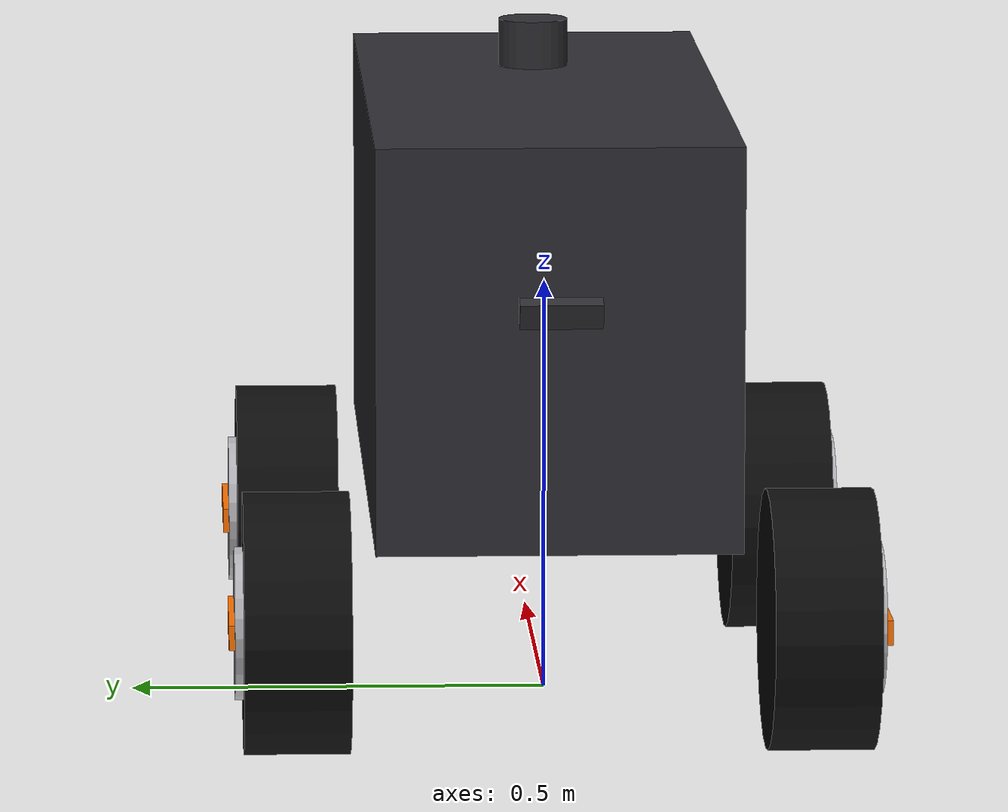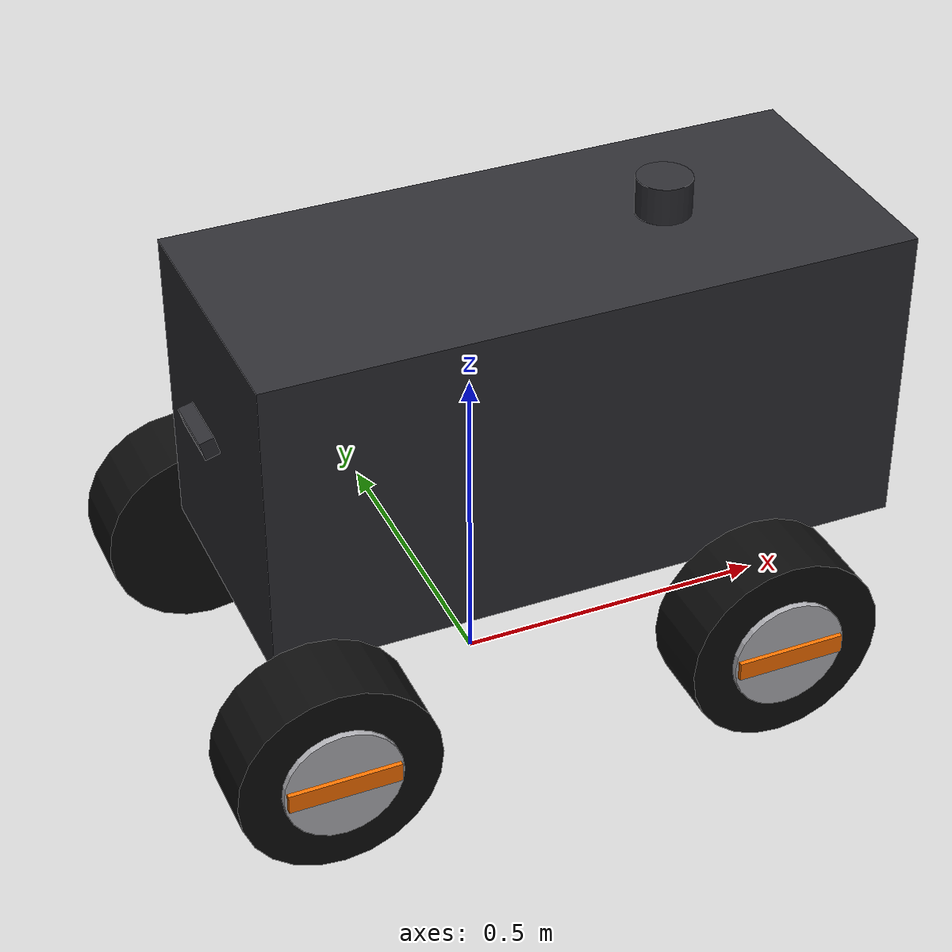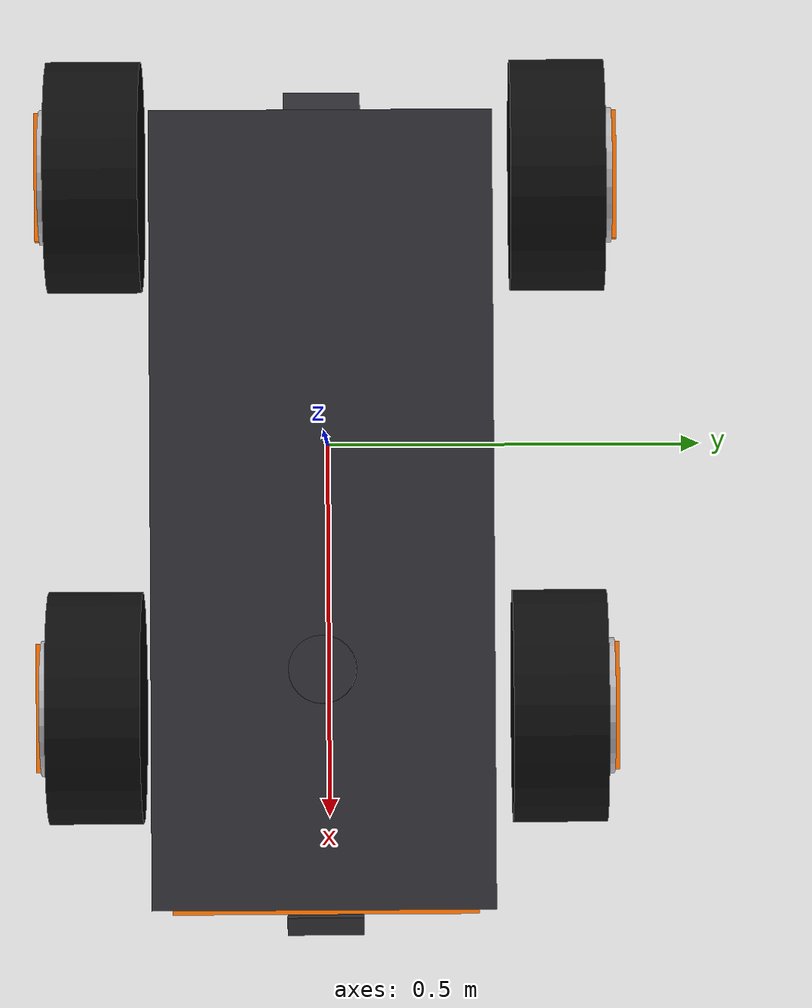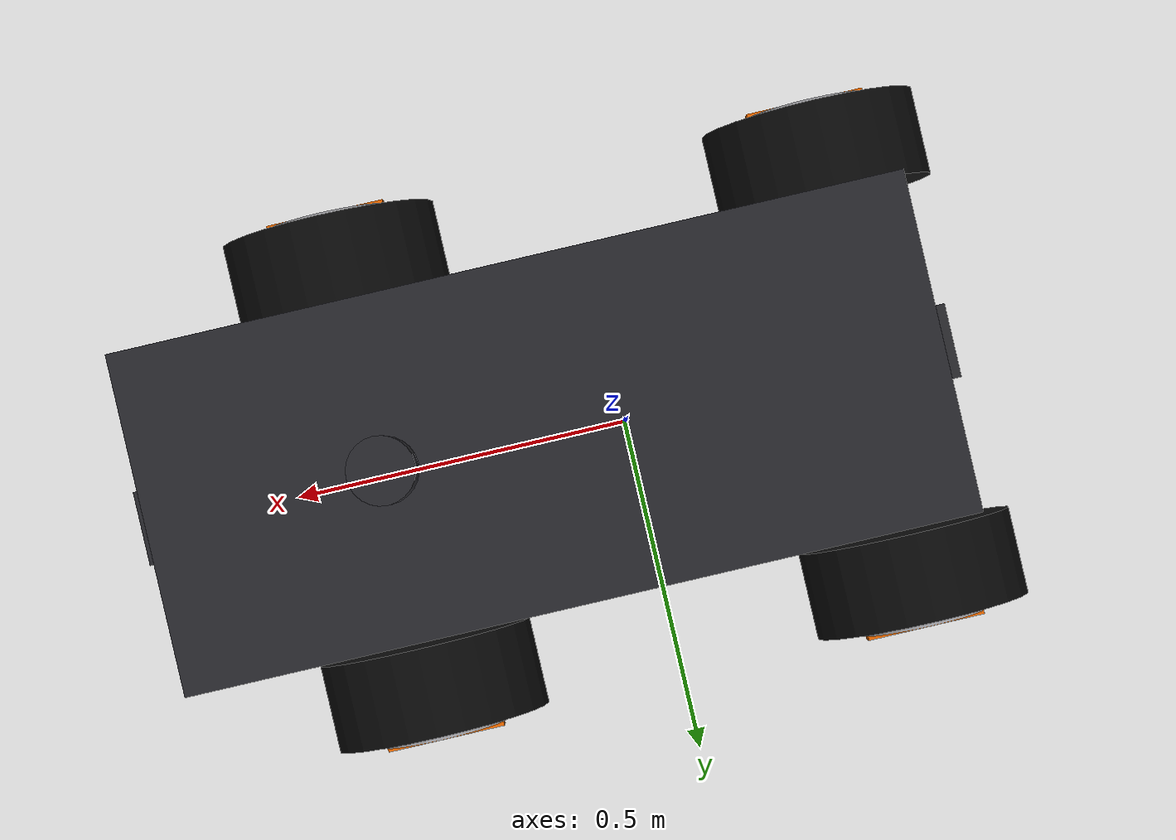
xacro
<?xml version="1.0"?>
<robot name="innex_1" xmlns:xacro="http://www.ros.org/wiki/xacro" xmlns:gz="http://gazebosim.org/schema">

  <!-- Will replace with proper values when rover is measured -->
  <xacro:property name="chassis_length" value="1.000"/>
  <xacro:property name="chassis_width" value="0.430"/>
  <xacro:property name="chassis_height" value="0.480"/>
  <xacro:property name="chassis_ground_clearance" value="0.240"/>
  <xacro:property name="chassis_x_offset" value="0.107"/>
  <xacro:property name="wheel_radius" value="0.154"/>
  <xacro:property name="wheel_width" value="0.125"/>
  <xacro:property name="wheelbase" value="0.705"/>
  <xacro:property name="track" value="0.614"/>

  <!-- will get proper masses when rover is weighed -->
  <xacro:property name="chassis_mass" value="56.0"/>
  <xacro:property name="wheel_mass" value="1.0"/>

  <material name="carbon">
    <color rgba="0.18 0.18 0.2 1"/>
  </material>
  <material name="tyre">
    <color rgba="0.05 0.05 0.05 1"/>
  </material>
  <material name="hub">
    <color rgba="0.7 0.7 0.72 1"/>
  </material>
  <material name="accent">
    <color rgba="1.0 0.45 0.0 1"/>
  </material>

  <xacro:macro name="box_inertia" params="mass x y z">
    <inertia ixx="${mass / 12 * (y * y + z * z)}" ixy="0" ixz="0"
             iyy="${mass / 12 * (x * x + z * z)}" iyz="0"
             izz="${mass / 12 * (x * x + y * y)}"/>
  </xacro:macro>

  <link name="base_link"/>

  <joint name="chassis_joint" type="fixed">
    <parent link="base_link"/>
    <child link="chassis"/>
    <origin xyz="${chassis_x_offset} 0 ${chassis_ground_clearance + chassis_height / 2}"/>
  </joint>

  <link name="chassis">
    <visual name="body">
      <geometry>
        <box size="${chassis_length} ${chassis_width} ${chassis_height}"/>
      </geometry>
      <material name="carbon"/>
    </visual>
    <visual name="front_plate">
      <origin xyz="${chassis_length / 2 + 0.005} 0 0"/>
      <geometry>
        <box size="0.01 ${chassis_width - 0.04} 0.12"/>
      </geometry>
      <material name="accent"/>
    </visual>
    <collision>
      <geometry>
        <box size="${chassis_length} ${chassis_width} ${chassis_height}"/>
      </geometry>
    </collision>
    <inertial>
      <mass value="${chassis_mass}"/>
      <xacro:box_inertia mass="${chassis_mass}" x="${chassis_length}" y="${chassis_width}" z="${chassis_height}"/>
    </inertial>
  </link>

    <xacro:macro name="wheel" params="name x y">
    <joint name="${name}_wheel_joint" type="continuous">
      <parent link="base_link"/>
      <child link="${name}_wheel"/>
      <origin xyz="${x * wheelbase / 2} ${y * track / 2} ${wheel_radius}"/>
      <axis xyz="0 1 0"/>
    </joint>

    <link name="${name}_wheel">
      <visual name="tyre">
        <origin rpy="${pi / 2} 0 0"/>
        <geometry>
          <cylinder radius="${wheel_radius}" length="${wheel_width}"/>
        </geometry>
        <material name="tyre"/>
      </visual>
      <visual name="hub">
        <origin xyz="0 ${y * (wheel_width / 2 + 0.005)} 0" rpy="${pi / 2} 0 0"/>
        <geometry>
          <cylinder radius="0.09" length="0.01"/>
        </geometry>
        <material name="hub"/>
      </visual>
      <visual name="spoke">
        <origin xyz="0 ${y * (wheel_width / 2 + 0.011)} 0"/>
        <geometry>
          <box size="0.17 0.012 0.03"/>
        </geometry>
        <material name="accent"/>
      </visual>
      <collision>
        <origin rpy="${pi / 2} 0 0"/>
        <geometry>
          <cylinder radius="${wheel_radius}" length="${wheel_width}"/>
        </geometry>
      </collision>
      <inertial>
        <mass value="${wheel_mass}"/>
        <inertia ixx="${wheel_mass * (3 * wheel_radius * wheel_radius + wheel_width * wheel_width) / 12}" ixy="0" ixz="0"
                 iyy="${wheel_mass * wheel_radius * wheel_radius / 2}" iyz="0"
                 izz="${wheel_mass * (3 * wheel_radius * wheel_radius + wheel_width * wheel_width) / 12}"/>
      </inertial>
    </link>
  </xacro:macro>

  <xacro:wheel name="front_left" x="1" y="1"/>
  <xacro:wheel name="front_right" x="1" y="-1"/>
  <xacro:wheel name="rear_left" x="-1" y="1"/>
  <xacro:wheel name="rear_right" x="-1" y="-1"/>

  <xacro:include filename="sensors/oak_d_pro.xacro"/>

  <!-- Downward camera pitch (15 deg) covers near ground while keeping beacon in view -->
  <xacro:property name="camera_pitch" value="${15 * pi / 180}"/>

  <!-- Front and rear OAK-D Pro cameras -->
  <xacro:oak_d_pro prefix="oak_front" parent="chassis" pitch="${camera_pitch}">
    <origin xyz="${chassis_length / 2 + 0.01 + 0.023 / 2} 0 0.05" rpy="0 0 0"/>
  </xacro:oak_d_pro>

  <xacro:oak_d_pro prefix="oak_rear" parent="chassis" pitch="${camera_pitch}">
    <origin xyz="${-chassis_length / 2 - 0.01 - 0.023 / 2} 0 0.05" rpy="0 0 ${pi}"/>
  </xacro:oak_d_pro>

  <xacro:include filename="sensors/ouster_os1.xacro"/>

  <!-- Ouster OS1-128 LiDAR mounted on front-top chassis -->
  <xacro:ouster_os1 prefix="os_sensor" parent="chassis">
    <origin xyz="0.20 0 ${chassis_height / 2}" rpy="0 0 0"/>
  </xacro:ouster_os1>

  <xacro:include filename="innex_1.gazebo.xacro"/>

</robot>

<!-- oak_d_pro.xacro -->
<robot xmlns:xacro="http://www.ros.org/wiki/xacro" xmlns:gz="http://gazebosim.org/schema">

  <!-- Luxonis OAK-D Pro active stereo camera macro -->
  <xacro:macro name="oak_d_pro" params="prefix parent *origin pitch:=0.0 topic_prefix:='' horizontal_fov:=1.2043 width:=640 height:=400 rate:=15.0">
    <xacro:property name="camera_mass" value="0.091"/>
    <xacro:property name="camera_x" value="0.023"/>
    <xacro:property name="camera_y" value="0.097"/>
    <xacro:property name="camera_z" value="0.030"/>
    <xacro:property name="actual_topic_prefix" value="${topic_prefix if topic_prefix else prefix}"/>

    <!-- Mechanical mount joint and link -->
    <joint name="${prefix}_mount_joint" type="fixed">
      <parent link="${parent}"/>
      <child link="${prefix}_mount_frame"/>
      <xacro:insert_block name="origin"/>
    </joint>

    <link name="${prefix}_mount_frame"/>

    <!-- Camera body joint tilted down by pitch parameter -->
    <joint name="${prefix}_joint" type="fixed">
      <parent link="${prefix}_mount_frame"/>
      <child link="${prefix}_frame"/>
      <origin xyz="0 0 0" rpy="0 ${pitch} 0"/>
    </joint>

    <link name="${prefix}_frame">
      <visual>
        <geometry>
          <box size="${camera_x} ${camera_y} ${camera_z}"/>
        </geometry>
        <material name="carbon"/>
      </visual>
      <collision>
        <geometry>
          <box size="${camera_x} ${camera_y} ${camera_z}"/>
        </geometry>
      </collision>
      <inertial>
        <mass value="${camera_mass}"/>
        <inertia ixx="${camera_mass / 12 * (camera_y * camera_y + camera_z * camera_z)}" ixy="0" ixz="0"
                 iyy="${camera_mass / 12 * (camera_x * camera_x + camera_z * camera_z)}" iyz="0"
                 izz="${camera_mass / 12 * (camera_x * camera_x + camera_y * camera_y)}"/>
      </inertial>
    </link>

    <!-- REP-103 Optical frame: +X right, +Y down, +Z forward -->
    <joint name="${prefix}_optical_joint" type="fixed">
      <parent link="${prefix}_frame"/>
      <child link="${prefix}_rgb_camera_optical_frame"/>
      <origin xyz="0 0 0" rpy="${-pi / 2} 0 ${-pi / 2}"/>
    </joint>

    <link name="${prefix}_rgb_camera_optical_frame"/>

    <!-- Gazebo Harmonic Camera Sensor -->
    <gazebo reference="${prefix}_frame">
      <sensor name="${prefix}" type="camera">
        <gz_frame_id>${prefix}_frame</gz_frame_id>
        <always_on>1</always_on>
        <update_rate>${rate}</update_rate>
        <visualize>true</visualize>
        <topic>${actual_topic_prefix}/image_raw</topic>
        <camera>
          <horizontal_fov>${horizontal_fov}</horizontal_fov>
          <image>
            <width>${width}</width>
            <height>${height}</height>
            <format>R8G8B8</format>
          </image>
          <clip>
            <near>0.1</near>
            <far>30.0</far>
          </clip>
          <optical_frame_id>${prefix}_rgb_camera_optical_frame</optical_frame_id>
          <camera_info_topic>${actual_topic_prefix}/camera_info</camera_info_topic>
        </camera>
      </sensor>
    </gazebo>
  </xacro:macro>

</robot>

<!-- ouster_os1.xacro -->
<robot xmlns:xacro="http://www.ros.org/wiki/xacro" xmlns:gz="http://gazebosim.org/schema">

  <!-- Ouster OS1-128 LiDAR macro -->
  <xacro:macro name="ouster_os1" params="prefix:=os_sensor parent:=chassis *origin topic:=ouster samples:=512 channels:=128 rate:=10.0 min_range:=0.5 max_range:=100.0">
    <xacro:property name="sensor_mass" value="0.455"/>
    <xacro:property name="sensor_radius" value="0.0425"/>
    <xacro:property name="sensor_height" value="0.0583"/>

    <!-- Base mounting link and joint -->
    <joint name="${prefix}_joint" type="fixed">
      <parent link="${parent}"/>
      <child link="${prefix}"/>
      <xacro:insert_block name="origin"/>
    </joint>

    <link name="${prefix}">
      <visual>
        <origin xyz="0 0 ${sensor_height / 2}" rpy="0 0 0"/>
        <geometry>
          <cylinder radius="${sensor_radius}" length="${sensor_height}"/>
        </geometry>
        <material name="carbon"/>
      </visual>
      <collision>
        <origin xyz="0 0 ${sensor_height / 2}" rpy="0 0 0"/>
        <geometry>
          <cylinder radius="${sensor_radius}" length="${sensor_height}"/>
        </geometry>
      </collision>
      <inertial>
        <origin xyz="0 0 ${sensor_height / 2}" rpy="0 0 0"/>
        <mass value="${sensor_mass}"/>
        <inertia ixx="${sensor_mass * (3 * sensor_radius * sensor_radius + sensor_height * sensor_height) / 12}" ixy="0" ixz="0"
                 iyy="${sensor_mass * (3 * sensor_radius * sensor_radius + sensor_height * sensor_height) / 12}" iyz="0"
                 izz="${sensor_mass * sensor_radius * sensor_radius / 2}"/>
      </inertial>
    </link>

    <!-- Gazebo Harmonic GPU LiDAR Sensor -->
    <gazebo reference="${prefix}">
      <sensor name="${prefix}" type="gpu_lidar">
        <gz_frame_id>${prefix}</gz_frame_id>
        <always_on>1</always_on>
        <update_rate>${rate}</update_rate>
        <visualize>false</visualize>
        <topic>${topic}</topic>
        <lidar>
          <scan>
            <horizontal>
              <samples>${samples}</samples>
              <resolution>1</resolution>
              <min_angle>-3.14159265</min_angle>
              <max_angle>3.14159265</max_angle>
            </horizontal>
            <vertical>
              <samples>${channels}</samples>
              <resolution>1</resolution>
              <min_angle>-0.3699</min_angle>
              <max_angle>0.3699</max_angle>
            </vertical>
          </scan>
          <range>
            <min>${min_range}</min>
            <max>${max_range}</max>
            <resolution>0.01</resolution>
          </range>
        </lidar>
      </sensor>
    </gazebo>
  </xacro:macro>

</robot>
